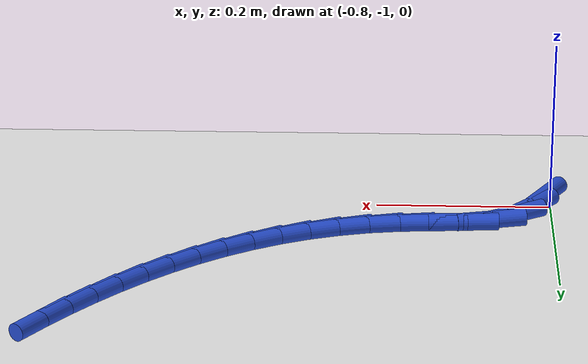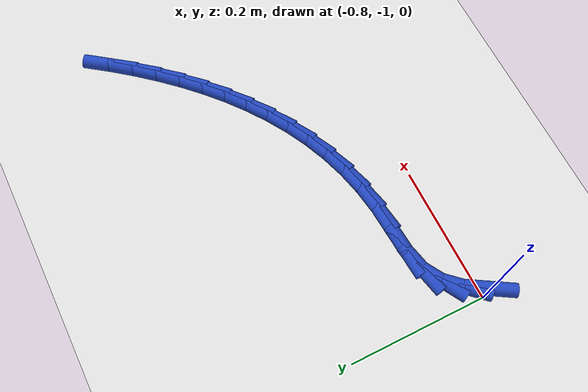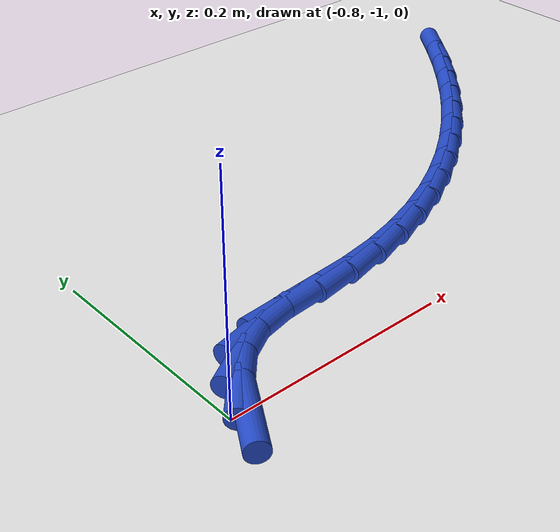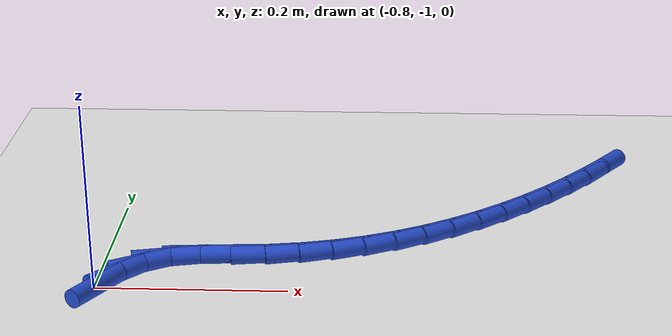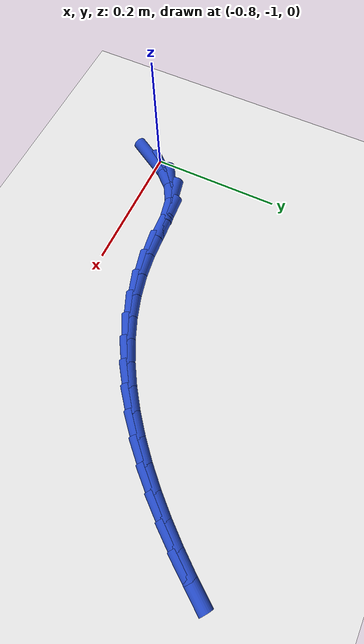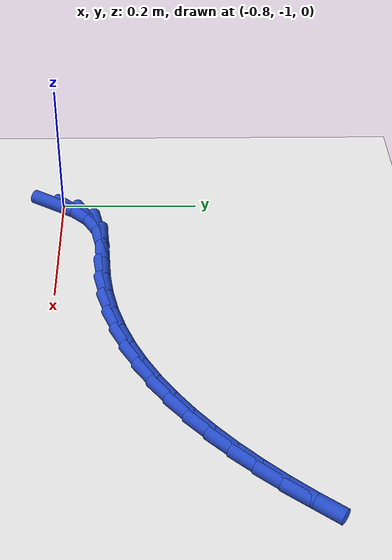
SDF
<sdf version="1.6">
 <world name="default">
  <model name="ground_plane">
   <static>1</static>
   <link name="link">
    <collision name="collision">
     <geometry><plane><normal>0 0 1</normal><size>100 100</size></plane></geometry>
     <surface><friction><ode><mu>100</mu><mu2>50</mu2></ode></friction></surface>
    </collision>
    <visual name="visual">
     <cast_shadows>0</cast_shadows>
     <geometry><plane><normal>0 0 1</normal><size>100 100</size></plane></geometry>
     <material>
      <script><uri>file://media/materials/scripts/gazebo.material</uri><name>Gazebo/WhiteGlow</name></script>
     </material>
    </visual>
   </link>
  </model>
  <model name="line">
   <link name="link_200">
    <pose>-0.7923436882604183 -1.0094042148793232 0.01 0 1.57 1.0317422991317864</pose>
    <collision name="collision">
     <geometry><cylinder><radius>0.01</radius><length>0.08</length></cylinder></geometry>
    </collision>
    <visual name="visual">
     <material>
      <script><name>Gazebo/Blue</name><uri>file://media/materials/scripts/gazebo.material</uri></script>
     </material>
     <geometry><cylinder><radius>0.01</radius><length>0.08</length></cylinder></geometry>
    </visual>
   </link>
   <link name="link_201">
    <pose>-0.7756876829025381 -0.9815580907106412 0.01 0 1.57 0.8247354243787502</pose>
    <collision name="collision">
     <geometry><cylinder><radius>0.01</radius><length>0.08</length></cylinder></geometry>
    </collision>
    <visual name="visual">
     <material>
      <script><name>Gazebo/Blue</name><uri>file://media/materials/scripts/gazebo.material</uri></script>
     </material>
     <geometry><cylinder><radius>0.01</radius><length>0.08</length></cylinder></geometry>
    </visual>
   </link>
   <link name="link_202">
    <pose>-0.7552773018682665 -0.9594752812116197 0.01 0 1.57 0.5244736883335683</pose>
    <collision name="collision">
     <geometry><cylinder><radius>0.01</radius><length>0.08</length></cylinder></geometry>
    </collision>
    <visual name="visual">
     <material>
      <script><name>Gazebo/Blue</name><uri>file://media/materials/scripts/gazebo.material</uri></script>
     </material>
     <geometry><cylinder><radius>0.01</radius><length>0.08</length></cylinder></geometry>
    </visual>
   </link>
   <link name="link_203">
    <pose>-0.7296628401610092 -0.9446568691825883 0.01 0 1.57 0.2173094744971365</pose>
    <collision name="collision">
     <geometry><cylinder><radius>0.01</radius><length>0.08</length></cylinder></geometry>
    </collision>
    <visual name="visual">
     <material>
      <script><name>Gazebo/Blue</name><uri>file://media/materials/scripts/gazebo.material</uri></script>
     </material>
     <geometry><cylinder><radius>0.01</radius><length>0.08</length></cylinder></geometry>
    </visual>
   </link>
   <link name="link_204">
    <pose>-0.6980724147380101 -0.9376818281440751 0.01 0 1.57 0.07006712647045078</pose>
    <collision name="collision">
     <geometry><cylinder><radius>0.01</radius><length>0.08</length></cylinder></geometry>
    </collision>
    <visual name="visual">
     <material>
      <script><name>Gazebo/Blue</name><uri>file://media/materials/scripts/gazebo.material</uri></script>
     </material>
     <geometry><cylinder><radius>0.01</radius><length>0.08</length></cylinder></geometry>
    </visual>
   </link>
   <link name="link_205">
    <pose>-0.6626266432006879 -0.9351941724865066 0.01 0 1.57 0.06558273316020505</pose>
    <collision name="collision">
     <geometry><cylinder><radius>0.01</radius><length>0.08</length></cylinder></geometry>
    </collision>
    <visual name="visual">
     <material>
      <script><name>Gazebo/Blue</name><uri>file://media/materials/scripts/gazebo.material</uri></script>
     </material>
     <geometry><cylinder><radius>0.01</radius><length>0.08</length></cylinder></geometry>
    </visual>
   </link>
   <link name="link_206">
    <pose>-0.6262087424854136 -0.932802356896031 0.01 0 1.57 0.14581858043918514</pose>
    <collision name="collision">
     <geometry><cylinder><radius>0.01</radius><length>0.08</length></cylinder></geometry>
    </collision>
    <visual name="visual">
     <material>
      <script><name>Gazebo/Blue</name><uri>file://media/materials/scripts/gazebo.material</uri></script>
     </material>
     <geometry><cylinder><radius>0.01</radius><length>0.08</length></cylinder></geometry>
    </visual>
   </link>
   <link name="link_207">
    <pose>-0.5907604968184544 -0.9275963933876769 0.01 0 1.57 0.2333598331061595</pose>
    <collision name="collision">
     <geometry><cylinder><radius>0.01</radius><length>0.08</length></cylinder></geometry>
    </collision>
    <visual name="visual">
     <material>
      <script><name>Gazebo/Blue</name><uri>file://media/materials/scripts/gazebo.material</uri></script>
     </material>
     <geometry><cylinder><radius>0.01</radius><length>0.08</length></cylinder></geometry>
    </visual>
   </link>
   <link name="link_208">
    <pose>-0.5564590920538444 -0.9194432857815495 0.01 0 1.57 0.3182358909602196</pose>
    <collision name="collision">
     <geometry><cylinder><radius>0.01</radius><length>0.08</length></cylinder></geometry>
    </collision>
    <visual name="visual">
     <material>
      <script><name>Gazebo/Blue</name><uri>file://media/materials/scripts/gazebo.material</uri></script>
     </material>
     <geometry><cylinder><radius>0.01</radius><length>0.08</length></cylinder></geometry>
    </visual>
   </link>
   <link name="link_209">
    <pose>-0.5232876044820501 -0.9085155128861752 0.01 0 1.57 0.3993606340070485</pose>
    <collision name="collision">
     <geometry><cylinder><radius>0.01</radius><length>0.08</length></cylinder></geometry>
    </collision>
    <visual name="visual">
     <material>
      <script><name>Gazebo/Blue</name><uri>file://media/materials/scripts/gazebo.material</uri></script>
     </material>
     <geometry><cylinder><radius>0.01</radius><length>0.08</length></cylinder></geometry>
    </visual>
   </link>
   <link name="link_210">
    <pose>-0.4912291103935345 -0.8949855535100794 0.01 0 1.57 0.47593325562258354</pose>
    <collision name="collision">
     <geometry><cylinder><radius>0.01</radius><length>0.08</length></cylinder></geometry>
    </collision>
    <visual name="visual">
     <material>
      <script><name>Gazebo/Blue</name><uri>file://media/materials/scripts/gazebo.material</uri></script>
     </material>
     <geometry><cylinder><radius>0.01</radius><length>0.08</length></cylinder></geometry>
    </visual>
   </link>
   <link name="link_211">
    <pose>-0.4602666860787622 -0.8790258864617879 0.01 0 1.57 0.5474496453599115</pose>
    <collision name="collision">
     <geometry><cylinder><radius>0.01</radius><length>0.08</length></cylinder></geometry>
    </collision>
    <visual name="visual">
     <material>
      <script><name>Gazebo/Blue</name><uri>file://media/materials/scripts/gazebo.material</uri></script>
     </material>
     <geometry><cylinder><radius>0.01</radius><length>0.08</length></cylinder></geometry>
    </visual>
   </link>
   <link name="link_212">
    <pose>-0.4303834078281977 -0.8608089905498268 0.01 0 1.57 0.6136750687403801</pose>
    <collision name="collision">
     <geometry><cylinder><radius>0.01</radius><length>0.08</length></cylinder></geometry>
    </collision>
    <visual name="visual">
     <material>
      <script><name>Gazebo/Blue</name><uri>file://media/materials/scripts/gazebo.material</uri></script>
     </material>
     <geometry><cylinder><radius>0.01</radius><length>0.08</length></cylinder></geometry>
    </visual>
   </link>
   <link name="link_213">
    <pose>-0.40156235193230516 -0.8405073445827216 0.01 0 1.57 0.6745940916551978</pose>
    <collision name="collision">
     <geometry><cylinder><radius>0.01</radius><length>0.08</length></cylinder></geometry>
    </collision>
    <visual name="visual">
     <material>
      <script><name>Gazebo/Blue</name><uri>file://media/materials/scripts/gazebo.material</uri></script>
     </material>
     <geometry><cylinder><radius>0.01</radius><length>0.08</length></cylinder></geometry>
    </visual>
   </link>
   <link name="link_214">
    <pose>-0.3737865946815488 -0.8182934273689979 0.01 0 1.57 0.730352987796069</pose>
    <collision name="collision">
     <geometry><cylinder><radius>0.01</radius><length>0.08</length></cylinder></geometry>
    </collision>
    <visual name="visual">
     <material>
      <script><name>Gazebo/Blue</name><uri>file://media/materials/scripts/gazebo.material</uri></script>
     </material>
     <geometry><cylinder><radius>0.01</radius><length>0.08</length></cylinder></geometry>
    </visual>
   </link>
   <link name="link_215">
    <pose>-0.34703921236639246 -0.794339717717181 0.01 0 1.57 0.7812054338242884</pose>
    <collision name="collision">
     <geometry><cylinder><radius>0.01</radius><length>0.08</length></cylinder></geometry>
    </collision>
    <visual name="visual">
     <material>
      <script><name>Gazebo/Blue</name><uri>file://media/materials/scripts/gazebo.material</uri></script>
     </material>
     <geometry><cylinder><radius>0.01</radius><length>0.08</length></cylinder></geometry>
    </visual>
   </link>
   <link name="link_216">
    <pose>-0.32130328127730196 -0.768818694435798 0.01 0 1.57 0.8274672069665869</pose>
    <collision name="collision">
     <geometry><cylinder><radius>0.01</radius><length>0.08</length></cylinder></geometry>
    </collision>
    <visual name="visual">
     <material>
      <script><name>Gazebo/Blue</name><uri>file://media/materials/scripts/gazebo.material</uri></script>
     </material>
     <geometry><cylinder><radius>0.01</radius><length>0.08</length></cylinder></geometry>
    </visual>
   </link>
   <link name="link_217">
    <pose>-0.2965618777047409 -0.7419028363333744 0.01 0 1.57 0.869481613835257</pose>
    <collision name="collision">
     <geometry><cylinder><radius>0.01</radius><length>0.08</length></cylinder></geometry>
    </collision>
    <visual name="visual">
     <material>
      <script><name>Gazebo/Blue</name><uri>file://media/materials/scripts/gazebo.material</uri></script>
     </material>
     <geometry><cylinder><radius>0.01</radius><length>0.08</length></cylinder></geometry>
    </visual>
   </link>
   <link name="link_218">
    <pose>-0.2727980779391735 -0.7137646222184352 0.01 0 1.57 0.9075949653624891</pose>
    <collision name="collision">
     <geometry><cylinder><radius>0.01</radius><length>0.08</length></cylinder></geometry>
    </collision>
    <visual name="visual">
     <material>
      <script><name>Gazebo/Blue</name><uri>file://media/materials/scripts/gazebo.material</uri></script>
     </material>
     <geometry><cylinder><radius>0.01</radius><length>0.08</length></cylinder></geometry>
    </visual>
   </link>
   <link name="link_219">
    <pose>-0.24999495827106413 -0.6845765308995065 0.01 0 1.57 0.9421403139017547</pose>
    <collision name="collision">
     <geometry><cylinder><radius>0.01</radius><length>0.08</length></cylinder></geometry>
    </collision>
    <visual name="visual">
     <material>
      <script><name>Gazebo/Blue</name><uri>file://media/materials/scripts/gazebo.material</uri></script>
     </material>
     <geometry><cylinder><radius>0.01</radius><length>0.08</length></cylinder></geometry>
    </visual>
   </link>
  </model>
 </world>
</sdf>
